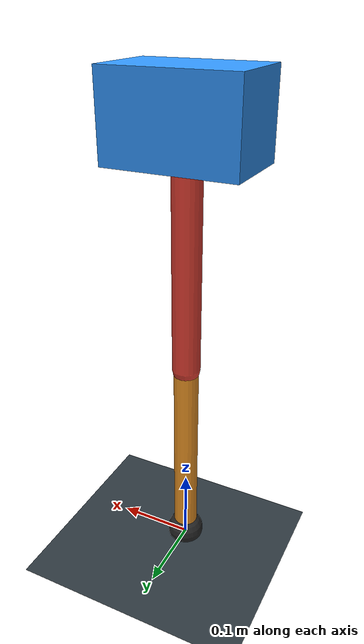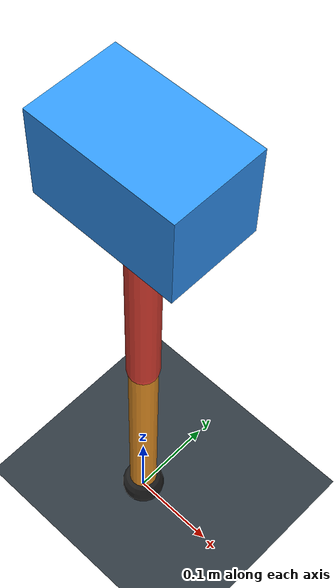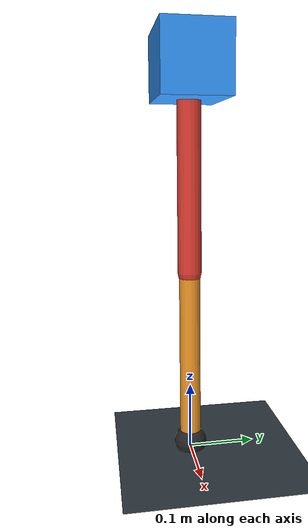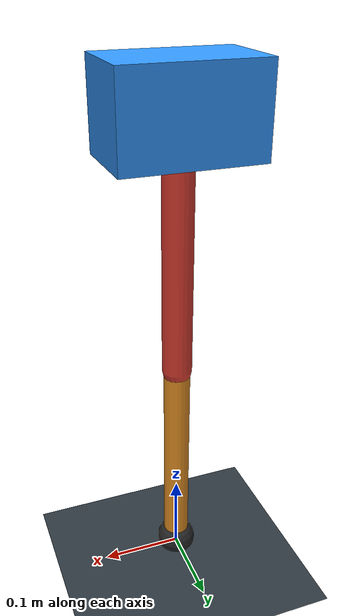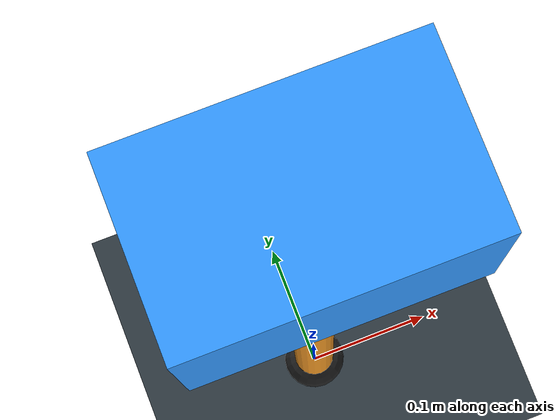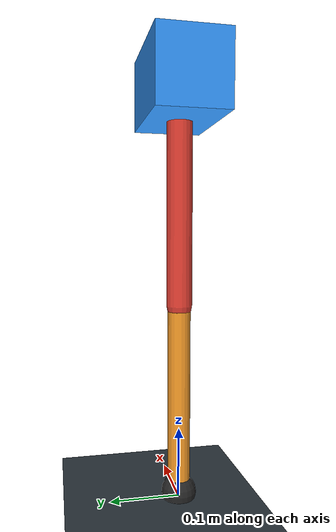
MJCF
<mujoco model="single_axis_two_bar">
  <compiler angle="radian" inertiafromgeom="true"/>
  <option timestep="0.001" integrator="implicitfast" gravity="0 0 -9.81"/>
  <default>
    <joint damping="0.08"/>
    <geom friction="1.2 0.01 0.0001" condim="3"/>
  </default>
  <worldbody>
    <geom name="floor" type="plane" size="5 5 0.1" rgba="0.18 0.22 0.25 1"/>
    <body name="carriage" pos="0 0 0.5826847291593604">
      <joint name="pole_slide" type="slide" axis="0 0 1"/>
      <geom name="payload" type="box" size="0.08 0.05 0.05" mass="2.6708674433990005" rgba="0.2 0.6 1 1"/>
      <body name="thigh" pos="0 0 0">
        <joint name="hip" type="hinge" axis="0 1 0"/>
        <geom name="thigh_link" type="capsule" fromto="0 0 0 0 0 -0.3042806451963922" size="0.018" mass="0.2168039804164147" rgba="0.9 0.25 0.2 1"/>
        <body name="shank" pos="0 0 -0.3042806451963922">
          <joint name="knee" type="hinge" axis="0 1 0"/>
          <geom name="shank_link" type="capsule" fromto="0 0 0 0 0 -0.2706520652771752" size="0.016" mass="0.19284317286149433" rgba="0.95 0.6 0.15 1"/>
          <geom name="foot" type="sphere" pos="0 0 -0.2706520652771752" size="0.025" mass="0.03" rgba="0.15 0.15 0.15 1"/>
          <site name="toe" pos="0 0 -0.2706520652771752" size="0.008"/>
        </body>
      </body>
    </body>
  </worldbody>
  <actuator>
    <motor name="hip_motor" joint="hip" ctrlrange="-36.20638453341225 36.20638453341225"/>
    <motor name="knee_motor" joint="knee" ctrlrange="-105.50501792633528 105.50501792633528"/>
  </actuator>
</mujoco>
